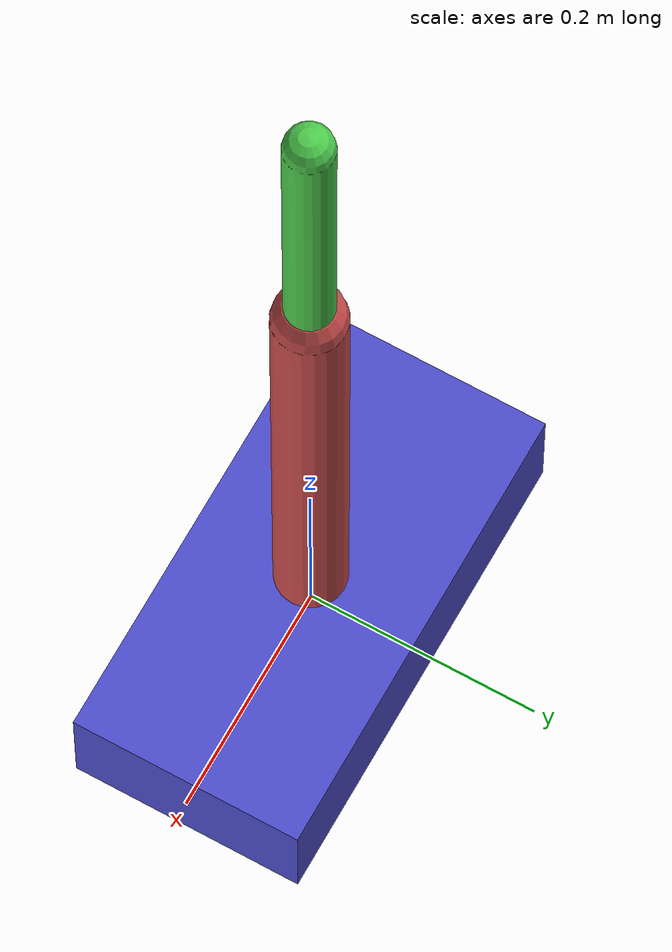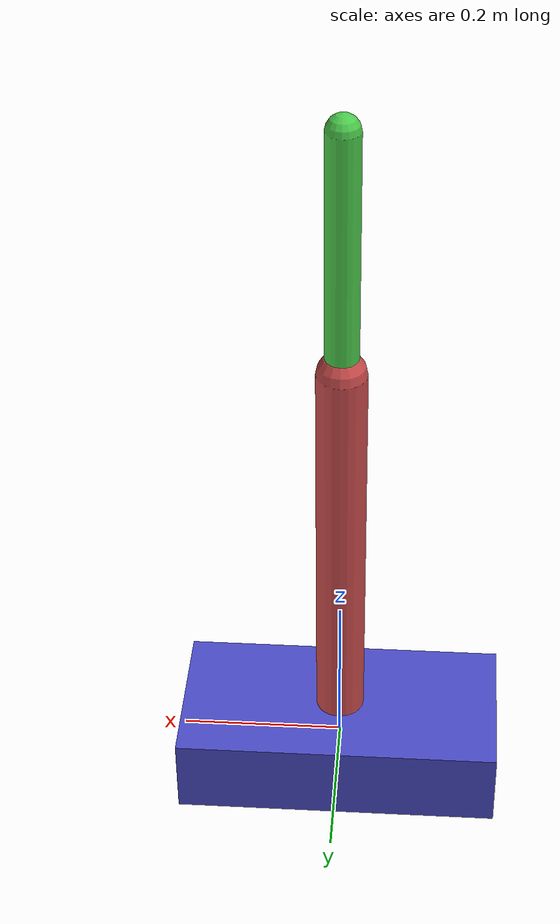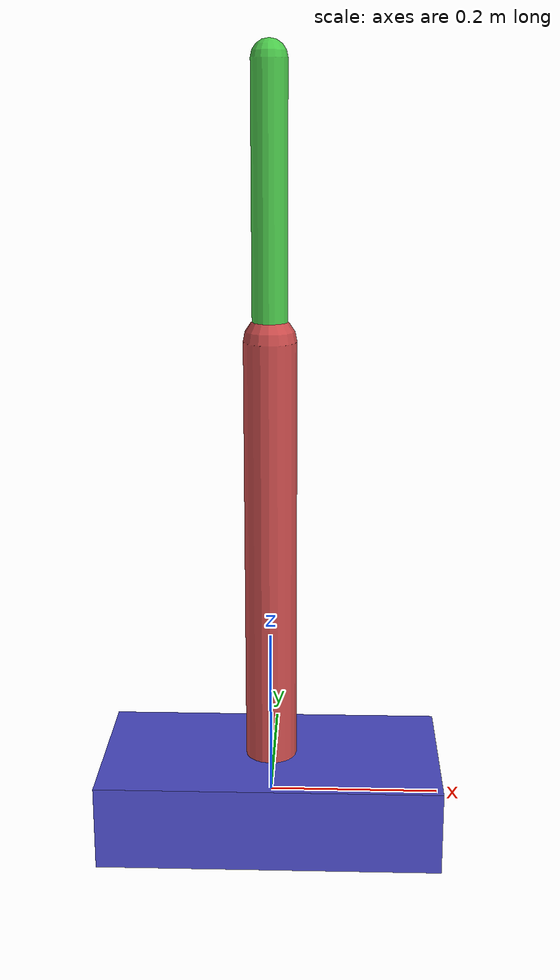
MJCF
<mujoco model="cart-double-pendulum">
  <option integrator="implicitfast" timestep="0.002" gravity="0 0 -9.81"/>

  <default>
    <geom contype="0" conaffinity="0"/>
  </default>

  <worldbody>
    <body name="cart" pos="0 0 0">
      <joint name="slider" type="slide" axis="1 0 0" damping="0.5"/>
      <geom type="box" size="0.2 0.1 0.05" mass="5" rgba="0.3 0.3 0.8 1"/>

      <body name="pole1" pos="0 0 0.05">
        <joint name="hinge1" type="hinge" axis="0 1 0" damping="0.05"/>
        <geom type="capsule" fromto="0 0 0 0 0 0.5" size="0.03" mass="1.0" rgba="0.8 0.3 0.3 1"/>

        <body name="pole2" pos="0 0 0.5">
          <joint name="hinge2" type="hinge" axis="0 1 0" damping="0.02"/>
          <geom type="capsule" fromto="0 0 0 0 0 0.3" size="0.02" mass="0.5" rgba="0.3 0.8 0.3 1"/>
        </body>
      </body>
    </body>
  </worldbody>

  <actuator>
    <motor name="slide" joint="slider" ctrlrange="-100 100"/>
  </actuator>
</mujoco>
